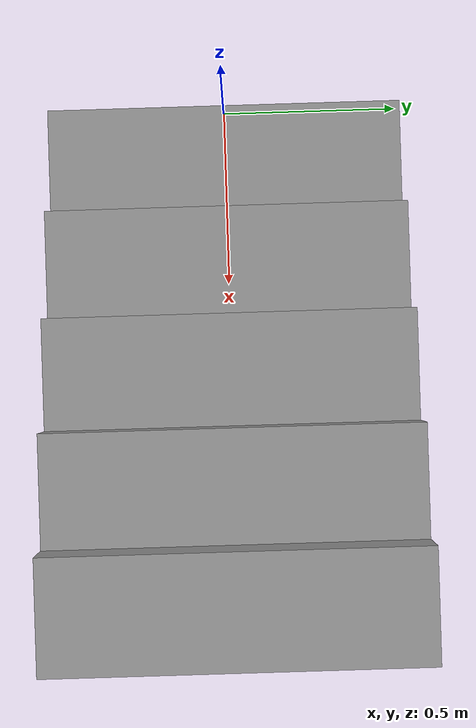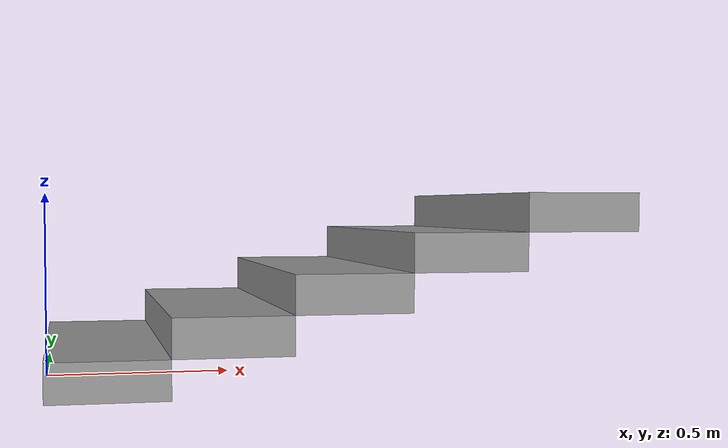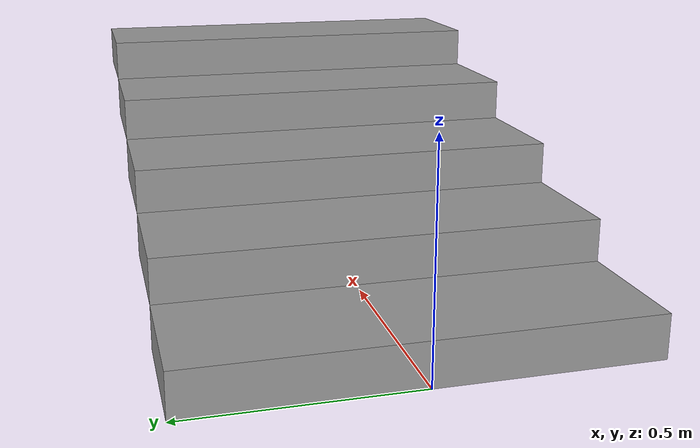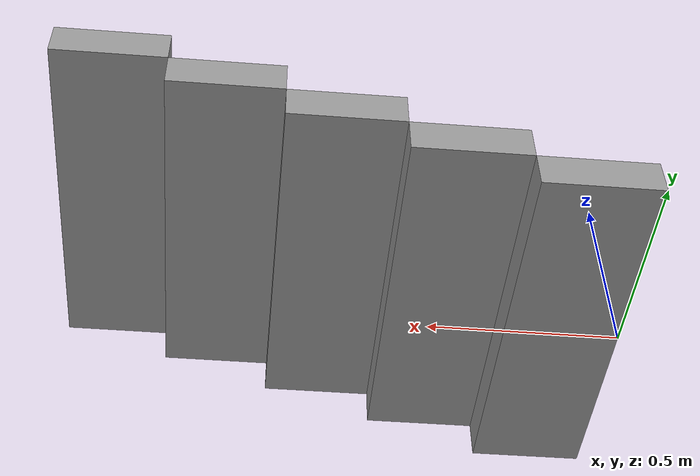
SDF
<?xml version="1.0" ?>
<sdf version="1.6">
  <model name="parametric_stairs">
    <static>true</static>
    <link name="step_0">
      <pose>0.15 0 0.05 0 0 0</pose>
      <collision name="collision">
        <geometry>
          <box>
            <size>0.3 1.0 0.1</size>
          </box>
        </geometry>
      </collision>
      <visual name="visual">
        <geometry>
          <box>
            <size>0.3 1.0 0.1</size>
          </box>
        </geometry>
        <material>
          <script>
            <uri>file://media/materials/scripts/gazebo.material</uri>
            <name>Gazebo/Grey</name>
          </script>
        </material>
      </visual>
    </link>
    <link name="step_1">
      <pose>0.44999999999999996 0 0.15000000000000002 0 0 0</pose>
      <collision name="collision">
        <geometry>
          <box>
            <size>0.3 1.0 0.1</size>
          </box>
        </geometry>
      </collision>
      <visual name="visual">
        <geometry>
          <box>
            <size>0.3 1.0 0.1</size>
          </box>
        </geometry>
        <material>
          <script>
            <uri>file://media/materials/scripts/gazebo.material</uri>
            <name>Gazebo/Grey</name>
          </script>
        </material>
      </visual>
    </link>
    <link name="step_2">
      <pose>0.75 0 0.25 0 0 0</pose>
      <collision name="collision">
        <geometry>
          <box>
            <size>0.3 1.0 0.1</size>
          </box>
        </geometry>
      </collision>
      <visual name="visual">
        <geometry>
          <box>
            <size>0.3 1.0 0.1</size>
          </box>
        </geometry>
        <material>
          <script>
            <uri>file://media/materials/scripts/gazebo.material</uri>
            <name>Gazebo/Grey</name>
          </script>
        </material>
      </visual>
    </link>
    <link name="step_3">
      <pose>1.05 0 0.35000000000000003 0 0 0</pose>
      <collision name="collision">
        <geometry>
          <box>
            <size>0.3 1.0 0.1</size>
          </box>
        </geometry>
      </collision>
      <visual name="visual">
        <geometry>
          <box>
            <size>0.3 1.0 0.1</size>
          </box>
        </geometry>
        <material>
          <script>
            <uri>file://media/materials/scripts/gazebo.material</uri>
            <name>Gazebo/Grey</name>
          </script>
        </material>
      </visual>
    </link>
    <link name="step_4">
      <pose>1.3499999999999999 0 0.45 0 0 0</pose>
      <collision name="collision">
        <geometry>
          <box>
            <size>0.3 1.0 0.1</size>
          </box>
        </geometry>
      </collision>
      <visual name="visual">
        <geometry>
          <box>
            <size>0.3 1.0 0.1</size>
          </box>
        </geometry>
        <material>
          <script>
            <uri>file://media/materials/scripts/gazebo.material</uri>
            <name>Gazebo/Grey</name>
          </script>
        </material>
      </visual>
    </link>
  </model>
</sdf>
